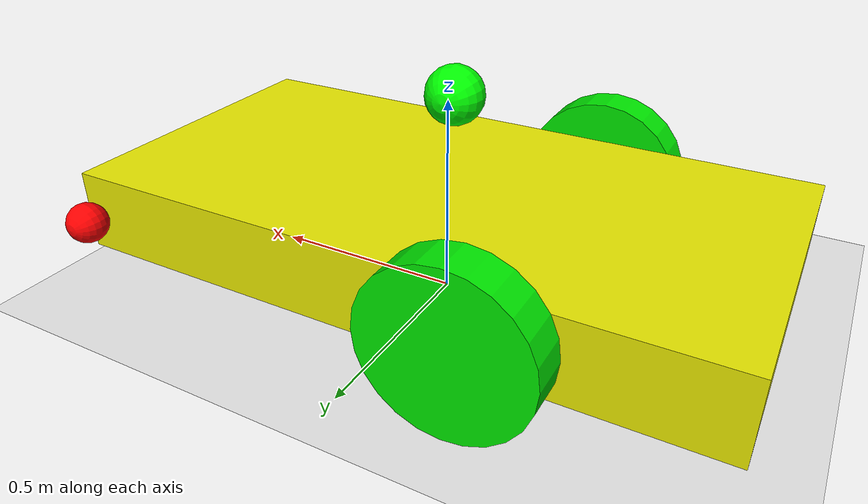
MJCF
<mujoco>
    <option gravity="0 0 -9.81" />
    <visual>
        <headlight diffuse="0.6 0.6 0.6" ambient="0.3 0.3 0.3" specular="0 0 0"/>
        <rgba haze="0.15 0.25 0.35 1"/>
        <global azimuth="-130" elevation="-20"/>
    </visual>
    <worldbody>
        <light diffuse=".5 .5 .5" pos="0 0 3" dir="0 0 -1"/>
		<geom type="plane" size="5 5 0.1" rgba=".9 .9 .9 1"/>
        <body name="chassis" pos="0 0 0.2">
            <joint type="free"/>
            <inertial pos="0 0 0" mass="1.0" diaginertia="0.0167 0.0567 0.0667"/>

            <geom type="box" size="0.8 0.4 0.1" rgba=".9 .9 0 1"/>
            <geom name="ballcast" type="sphere" size="0.05" pos="0.5 0 -0.15" rgba="0.2 0.2 0.2 1" contype="1" conaffinity="1"/>

            <body name="left-tire" pos="-0.25 0.45 0" euler='90 0 0'>
                <joint name="left-wheel" type="hinge" axis="0 0 -1"/>
                <inertial pos="0 0 0" mass="0.1" diaginertia="0.00106 0.00106 0.002"/>

                <geom type="cylinder" size=".2 0.05" friction="1 0.1 0.1" rgba="0 .9 0 1"/>
                <site name="x_axis" pos="1 0 0" size="0.05" rgba="1 0 0 1"/>
                <site name="y_axis" pos="0 0.5 0" size="0.05" rgba="0 1 0 1"/>
                <site name="z_axis" pos="0 0 1.0" size="0.05" rgba="0 0 1 1"/>
            </body>

            <body name="right-tire" pos="-0.25 -0.45 0" euler='90 0 0'>
                <joint name="right-wheel" type="hinge" axis="0 0 -1"/>
                <inertial pos="0 0 0" mass="0.1" diaginertia="0.00106 0.00106 0.002"/>

                <geom type="cylinder" size=".2 0.05" friction="1 0.1 0.1" rgba="0 .9 0 1"/>
            </body>
        </body>
    </worldbody>

    <sensor>
        <framepos objtype="geom" objname="ballcast"/>
    </sensor>

    <actuator>
        <velocity name="left-velocity-servo" joint="left-wheel" kv="10"  forcelimited="true" forcerange="-1.0 1.0"/>
        <velocity name="right-velocity-servo" joint="right-wheel" kv="10" forcelimited="true" forcerange="-1.0 1.0"/>
    </actuator>
</mujoco>
